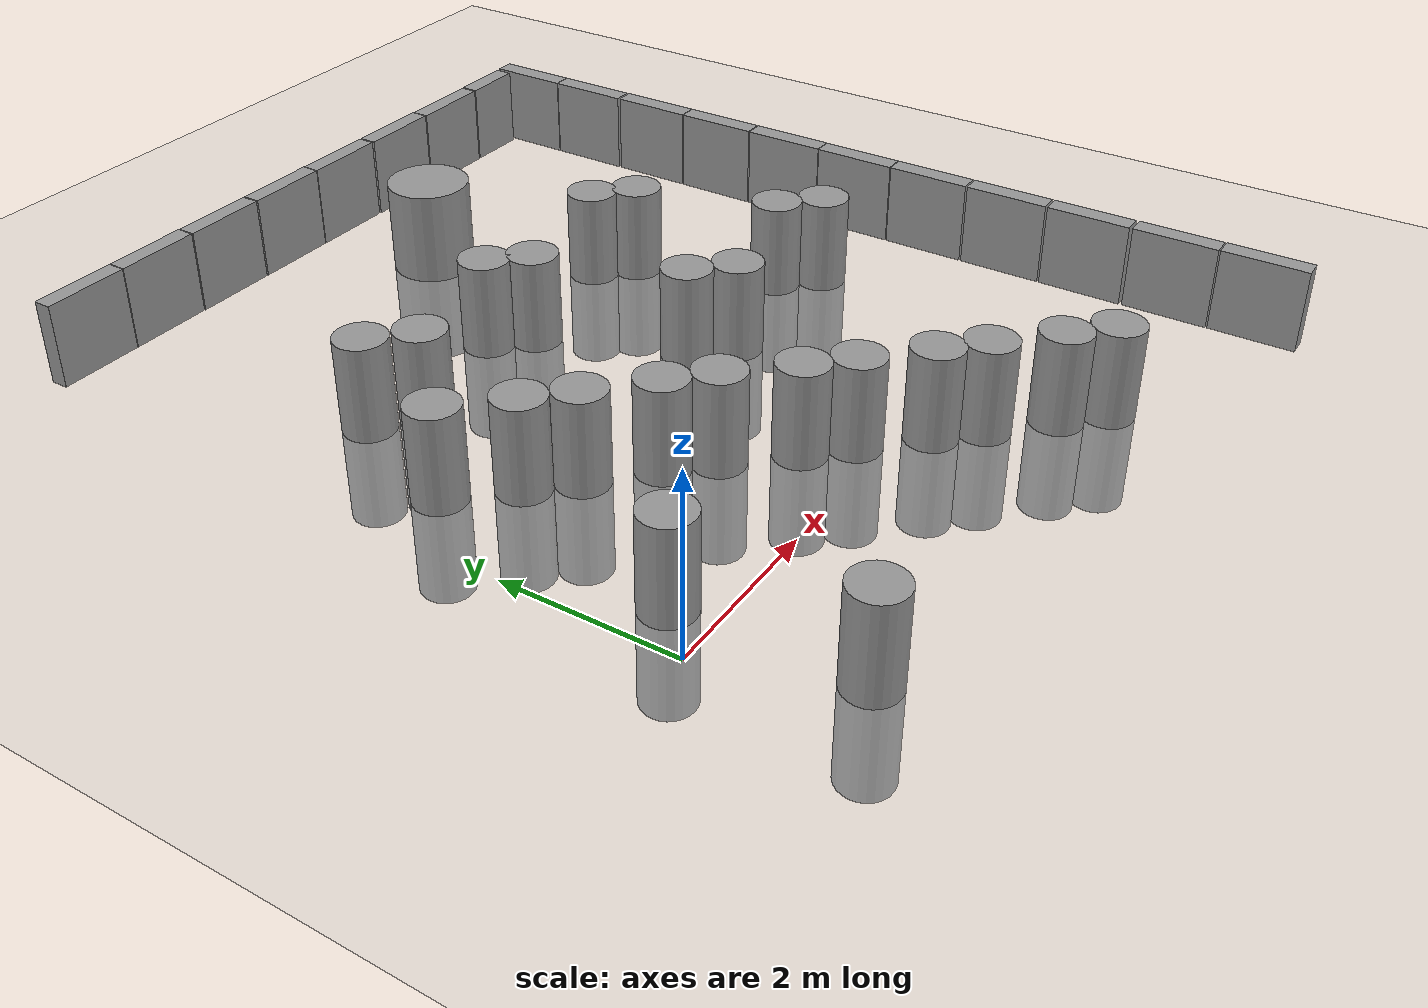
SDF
<sdf version="1.6">
 <world name="default">
  <model name="ground_plane">
   <static>1</static>
   <static>1</static>
   <link name="link">
    <collision name="collision">
     <geometry><plane><normal>0 0 1</normal><size>100 100</size></plane></geometry>
     <surface><friction><ode><mu>100</mu><mu2>50</mu2></ode></friction></surface>
    </collision>
    <visual name="visual">
     <cast_shadows>0</cast_shadows>
     <geometry><plane><normal>0 0 1</normal><size>100 100</size></plane></geometry>
     <material>
      <script><uri>file://media/materials/scripts/gazebo.material</uri><name>Gazebo/Grey</name></script>
     </material>
    </visual>
   </link>
  </model>
  <model name="unit_box_clone_7">
   <pose>0.592842 8.11157 0.499999 -1e-06 2e-06 0.00043</pose>
   <link name="link">
    <inertial>
     <mass>1</mass>
     <inertia>
      <ixx>0.166667</ixx>
      <ixy>0</ixy>
      <ixz>0</ixz>
      <iyy>0.166667</iyy>
      <iyz>0</iyz>
      <izz>0.166667</izz>
     </inertia>
    </inertial>
    <collision name="collision"><geometry><box><size>1 0.210541 1</size></box></geometry></collision>
    <visual name="visual">
     <geometry><box><size>1 0.210541 1</size></box></geometry>
     <material>
      <script><name>Gazebo/Grey</name><uri>file://media/materials/scripts/gazebo.material</uri></script>
     </material>
    </visual>
   </link>
  </model>
  <model name="unit_box_clone_8">
   <pose>1.60043 8.11008 0.499999 -1e-06 2e-06 0.00043</pose>
   <link name="link">
    <inertial>
     <mass>1</mass>
     <inertia>
      <ixx>0.166667</ixx>
      <ixy>0</ixy>
      <ixz>0</ixz>
      <iyy>0.166667</iyy>
      <iyz>0</iyz>
      <izz>0.166667</izz>
     </inertia>
    </inertial>
    <collision name="collision"><geometry><box><size>1 0.210541 1</size></box></geometry></collision>
    <visual name="visual">
     <geometry><box><size>1 0.210541 1</size></box></geometry>
     <material>
      <script><name>Gazebo/Grey</name><uri>file://media/materials/scripts/gazebo.material</uri></script>
     </material>
    </visual>
   </link>
  </model>
  <model name="unit_box_clone_9">
   <pose>2.60987 8.10289 0.499999 -1e-06 2e-06 0.00043</pose>
   <link name="link">
    <inertial>
     <mass>1</mass>
     <inertia>
      <ixx>0.166667</ixx>
      <ixy>0</ixy>
      <ixz>0</ixz>
      <iyy>0.166667</iyy>
      <iyz>0</iyz>
      <izz>0.166667</izz>
     </inertia>
    </inertial>
    <collision name="collision"><geometry><box><size>1 0.210541 1</size></box></geometry></collision>
    <visual name="visual">
     <geometry><box><size>1 0.210541 1</size></box></geometry>
     <material>
      <script><name>Gazebo/Grey</name><uri>file://media/materials/scripts/gazebo.material</uri></script>
     </material>
    </visual>
   </link>
  </model>
  <model name="unit_box_clone_10">
   <pose>3.62649 8.09929 0.499999 -1e-06 2e-06 0.00043</pose>
   <link name="link">
    <inertial>
     <mass>1</mass>
     <inertia>
      <ixx>0.166667</ixx>
      <ixy>0</ixy>
      <ixz>0</ixz>
      <iyy>0.166667</iyy>
      <iyz>0</iyz>
      <izz>0.166667</izz>
     </inertia>
    </inertial>
    <collision name="collision"><geometry><box><size>1 0.210541 1</size></box></geometry></collision>
    <visual name="visual">
     <geometry><box><size>1 0.210541 1</size></box></geometry>
     <material>
      <script><name>Gazebo/Grey</name><uri>file://media/materials/scripts/gazebo.material</uri></script>
     </material>
    </visual>
   </link>
  </model>
  <model name="unit_box_clone_11">
   <pose>4.63312 8.09533 0.499999 1e-06 2e-06 -0.003028</pose>
   <link name="link">
    <inertial>
     <mass>1</mass>
     <inertia>
      <ixx>0.166667</ixx>
      <ixy>0</ixy>
      <ixz>0</ixz>
      <iyy>0.166667</iyy>
      <iyz>0</iyz>
      <izz>0.166667</izz>
     </inertia>
    </inertial>
    <collision name="collision"><geometry><box><size>1 0.210541 1</size></box></geometry></collision>
    <visual name="visual">
     <geometry><box><size>1 0.210541 1</size></box></geometry>
     <material>
      <script><name>Gazebo/Grey</name><uri>file://media/materials/scripts/gazebo.material</uri></script>
     </material>
    </visual>
   </link>
  </model>
  <model name="unit_box_0_clone_0">
   <pose>8.11522 6.68459 0.5 1e-06 -1e-06 -0.000246</pose>
   <link name="link">
    <inertial>
     <mass>1</mass>
     <inertia>
      <ixx>0.166667</ixx>
      <ixy>0</ixy>
      <ixz>0</ixz>
      <iyy>0.166667</iyy>
      <iyz>0</iyz>
      <izz>0.166667</izz>
     </inertia>
    </inertial>
    <collision name="collision"><geometry><box><size>0.230819 1 1</size></box></geometry></collision>
    <visual name="visual">
     <geometry><box><size>0.230819 1 1</size></box></geometry>
     <material>
      <script><name>Gazebo/Grey</name><uri>file://media/materials/scripts/gazebo.material</uri></script>
     </material>
    </visual>
   </link>
  </model>
  <model name="unit_box_0_clone_1">
   <pose>8.11915 5.6517 0.5 -1e-06 -1e-06 0.000125</pose>
   <link name="link">
    <inertial>
     <mass>1</mass>
     <inertia>
      <ixx>0.166667</ixx>
      <ixy>0</ixy>
      <ixz>0</ixz>
      <iyy>0.166667</iyy>
      <iyz>0</iyz>
      <izz>0.166667</izz>
     </inertia>
    </inertial>
    <collision name="collision"><geometry><box><size>0.230819 1 1</size></box></geometry></collision>
    <visual name="visual">
     <geometry><box><size>0.230819 1 1</size></box></geometry>
     <material>
      <script><name>Gazebo/Grey</name><uri>file://media/materials/scripts/gazebo.material</uri></script>
     </material>
    </visual>
   </link>
  </model>
  <model name="unit_box_0_clone_2">
   <pose>8.11914 4.64016 0.5 1e-06 1e-06 0.00014</pose>
   <link name="link">
    <inertial>
     <mass>1</mass>
     <inertia>
      <ixx>0.166667</ixx>
      <ixy>0</ixy>
      <ixz>0</ixz>
      <iyy>0.166667</iyy>
      <iyz>0</iyz>
      <izz>0.166667</izz>
     </inertia>
    </inertial>
    <collision name="collision"><geometry><box><size>0.230819 1 1</size></box></geometry></collision>
    <visual name="visual">
     <geometry><box><size>0.230819 1 1</size></box></geometry>
     <material>
      <script><name>Gazebo/Grey</name><uri>file://media/materials/scripts/gazebo.material</uri></script>
     </material>
    </visual>
   </link>
  </model>
  <model name="unit_box_0_clone_3">
   <pose>8.11914 3.62226 0.5 1e-06 1e-06 0.000121</pose>
   <link name="link">
    <inertial>
     <mass>1</mass>
     <inertia>
      <ixx>0.166667</ixx>
      <ixy>0</ixy>
      <ixz>0</ixz>
      <iyy>0.166667</iyy>
      <iyz>0</iyz>
      <izz>0.166667</izz>
     </inertia>
    </inertial>
    <collision name="collision"><geometry><box><size>0.230819 1 1</size></box></geometry></collision>
    <visual name="visual">
     <geometry><box><size>0.230819 1 1</size></box></geometry>
     <material>
      <script><name>Gazebo/Grey</name><uri>file://media/materials/scripts/gazebo.material</uri></script>
     </material>
    </visual>
   </link>
  </model>
  <model name="unit_box_0_clone_4">
   <pose>8.11332 2.61062 0.5 -1e-06 1e-06 -0.001217</pose>
   <link name="link">
    <inertial>
     <mass>1</mass>
     <inertia>
      <ixx>0.166667</ixx>
      <ixy>0</ixy>
      <ixz>0</ixz>
      <iyy>0.166667</iyy>
      <iyz>0</iyz>
      <izz>0.166667</izz>
     </inertia>
    </inertial>
    <collision name="collision"><geometry><box><size>0.230819 1 1</size></box></geometry></collision>
    <visual name="visual">
     <geometry><box><size>0.230819 1 1</size></box></geometry>
     <material>
      <script><name>Gazebo/Grey</name><uri>file://media/materials/scripts/gazebo.material</uri></script>
     </material>
    </visual>
   </link>
  </model>
  <model name="unit_box_0_clone_5">
   <pose>8.11277 1.59919 0.5 1e-06 1e-06 0.000121</pose>
   <link name="link">
    <inertial>
     <mass>1</mass>
     <inertia>
      <ixx>0.166667</ixx>
      <ixy>0</ixy>
      <ixz>0</ixz>
      <iyy>0.166667</iyy>
      <iyz>0</iyz>
      <izz>0.166667</izz>
     </inertia>
    </inertial>
    <collision name="collision"><geometry><box><size>0.230819 1 1</size></box></geometry></collision>
    <visual name="visual">
     <geometry><box><size>0.230819 1 1</size></box></geometry>
     <material>
      <script><name>Gazebo/Grey</name><uri>file://media/materials/scripts/gazebo.material</uri></script>
     </material>
    </visual>
   </link>
  </model>
  <model name="unit_box_0_clone_6">
   <pose>8.11277 0.574937 0.5 1e-06 1e-06 0.000121</pose>
   <link name="link">
    <inertial>
     <mass>1</mass>
     <inertia>
      <ixx>0.166667</ixx>
      <ixy>0</ixy>
      <ixz>0</ixz>
      <iyy>0.166667</iyy>
      <iyz>0</iyz>
      <izz>0.166667</izz>
     </inertia>
    </inertial>
    <collision name="collision"><geometry><box><size>0.230819 1 1</size></box></geometry></collision>
    <visual name="visual">
     <geometry><box><size>0.230819 1 1</size></box></geometry>
     <material>
      <script><name>Gazebo/Grey</name><uri>file://media/materials/scripts/gazebo.material</uri></script>
     </material>
    </visual>
   </link>
  </model>
  <model name="unit_box_0_clone_7">
   <pose>8.11276 -0.449321 0.5 1e-06 1e-06 0.000121</pose>
   <link name="link">
    <inertial>
     <mass>1</mass>
     <inertia>
      <ixx>0.166667</ixx>
      <ixy>0</ixy>
      <ixz>0</ixz>
      <iyy>0.166667</iyy>
      <iyz>0</iyz>
      <izz>0.166667</izz>
     </inertia>
    </inertial>
    <collision name="collision"><geometry><box><size>0.230819 1 1</size></box></geometry></collision>
    <visual name="visual">
     <geometry><box><size>0.230819 1 1</size></box></geometry>
     <material>
      <script><name>Gazebo/Grey</name><uri>file://media/materials/scripts/gazebo.material</uri></script>
     </material>
    </visual>
   </link>
  </model>
  <model name="unit_box_0_clone_8">
   <pose>8.11912 -1.48631 0.5 1e-06 1e-06 0.000121</pose>
   <link name="link">
    <inertial>
     <mass>1</mass>
     <inertia>
      <ixx>0.166667</ixx>
      <ixy>0</ixy>
      <ixz>0</ixz>
      <iyy>0.166667</iyy>
      <iyz>0</iyz>
      <izz>0.166667</izz>
     </inertia>
    </inertial>
    <collision name="collision"><geometry><box><size>0.230819 1 1</size></box></geometry></collision>
    <visual name="visual">
     <geometry><box><size>0.230819 1 1</size></box></geometry>
     <material>
      <script><name>Gazebo/Grey</name><uri>file://media/materials/scripts/gazebo.material</uri></script>
     </material>
    </visual>
   </link>
  </model>
  <model name="unit_box_0_clone_9">
   <pose>8.12548 -2.50421 0.5 1e-06 1e-06 0.000121</pose>
   <link name="link">
    <inertial>
     <mass>1</mass>
     <inertia>
      <ixx>0.166667</ixx>
      <ixy>0</ixy>
      <ixz>0</ixz>
      <iyy>0.166667</iyy>
      <iyz>0</iyz>
      <izz>0.166667</izz>
     </inertia>
    </inertial>
    <collision name="collision"><geometry><box><size>0.230819 1 1</size></box></geometry></collision>
    <visual name="visual">
     <geometry><box><size>0.230819 1 1</size></box></geometry>
     <material>
      <script><name>Gazebo/Grey</name><uri>file://media/materials/scripts/gazebo.material</uri></script>
     </material>
    </visual>
   </link>
  </model>
  <model name="unit_box_0_clone_0_clone">
   <pose>8.11438 7.69322 0.5 -1e-06 -1e-06 0.000107</pose>
   <link name="link">
    <inertial>
     <mass>1</mass>
     <inertia>
      <ixx>0.166667</ixx>
      <ixy>0</ixy>
      <ixz>0</ixz>
      <iyy>0.166667</iyy>
      <iyz>0</iyz>
      <izz>0.166667</izz>
     </inertia>
    </inertial>
    <collision name="collision"><geometry><box><size>0.230819 1 1</size></box></geometry></collision>
    <visual name="visual">
     <geometry><box><size>0.230819 1 1</size></box></geometry>
     <material>
      <script><name>Gazebo/Grey</name><uri>file://media/materials/scripts/gazebo.material</uri></script>
     </material>
    </visual>
   </link>
  </model>
  <model name="unit_box_clone_11_clone">
   <pose>5.65439 8.08347 0.499999 -1e-06 2e-06 -0.003408</pose>
   <link name="link">
    <inertial>
     <mass>1</mass>
     <inertia>
      <ixx>0.166667</ixx>
      <ixy>0</ixy>
      <ixz>0</ixz>
      <iyy>0.166667</iyy>
      <iyz>0</iyz>
      <izz>0.166667</izz>
     </inertia>
    </inertial>
    <collision name="collision"><geometry><box><size>1 0.210541 1</size></box></geometry></collision>
    <visual name="visual">
     <geometry><box><size>1 0.210541 1</size></box></geometry>
     <material>
      <script><name>Gazebo/Grey</name><uri>file://media/materials/scripts/gazebo.material</uri></script>
     </material>
    </visual>
   </link>
  </model>
  <model name="unit_box_clone_11_clone_0">
   <pose>6.6644 8.07301 0.499999 1e-06 2e-06 -0.003015</pose>
   <link name="link">
    <inertial>
     <mass>1</mass>
     <inertia>
      <ixx>0.166667</ixx>
      <ixy>0</ixy>
      <ixz>0</ixz>
      <iyy>0.166667</iyy>
      <iyz>0</iyz>
      <izz>0.166667</izz>
     </inertia>
    </inertial>
    <collision name="collision"><geometry><box><size>1 0.210541 1</size></box></geometry></collision>
    <visual name="visual">
     <geometry><box><size>1 0.210541 1</size></box></geometry>
     <material>
      <script><name>Gazebo/Grey</name><uri>file://media/materials/scripts/gazebo.material</uri></script>
     </material>
    </visual>
   </link>
  </model>
  <model name="unit_box_clone_11_clone_1_clone">
   <pose>7.56436 8.07324 0.499997 -2e-06 -8e-06 -0.006519</pose>
   <link name="link">
    <inertial>
     <mass>1</mass>
     <inertia>
      <ixx>0.166667</ixx>
      <ixy>0</ixy>
      <ixz>0</ixz>
      <iyy>0.166667</iyy>
      <iyz>0</iyz>
      <izz>0.166667</izz>
     </inertia>
    </inertial>
    <collision name="collision"><geometry><box><size>0.750223 0.210541 1</size></box></geometry></collision>
    <visual name="visual">
     <geometry><box><size>0.750223 0.210541 1</size></box></geometry>
     <material>
      <script><name>Gazebo/Grey</name><uri>file://media/materials/scripts/gazebo.material</uri></script>
     </material>
    </visual>
   </link>
  </model>
  <model name="unit_cylinder_153_clone_clone_5_clone_clone_13_clone_0_clone_29_clone_32_clone_0_clone_4_clone_46_clone_42_clone_clone_clone_3_clone">
   <static>1</static>
   <pose>4.484 6.51326 0 0 -0 0</pose>
   <link name="link">
    <inertial>
     <mass>1</mass>
     <inertia><ixx>0.145833</ixx><ixy>0</ixy><ixz>0</ixz><iyy>0.145833</iyy><iyz>0</iyz><izz>0.125</izz></inertia>
    </inertial>
    <collision name="collision">
     <geometry><cylinder><radius>0.484115</radius><length>2.18667</length></cylinder></geometry>
    </collision>
    <visual name="visual">
     <geometry><cylinder><radius>0.484115</radius><length>2.18667</length></cylinder></geometry>
     <material>
      <script><name>Gazebo/Grey</name><uri>file://media/materials/scripts/gazebo.material</uri></script>
     </material>
    </visual>
   </link>
  </model>
  <model name="unit_cylinder_153_clone_clone_5_clone_clone_13_clone_0_clone_29_clone_32_clone_0_clone_4_clone_46_clone_42_clone_clone_clone_4_clone_2_clone_16_clone_6_clone">
   <static>1</static>
   <pose>2.71012 1.31041 0 0 -0 0</pose>
   <link name="link">
    <inertial>
     <mass>1</mass>
     <inertia><ixx>0.145833</ixx><ixy>0</ixy><ixz>0</ixz><iyy>0.145833</iyy><iyz>0</iyz><izz>0.125</izz></inertia>
    </inertial>
    <collision name="collision">
     <geometry><cylinder><radius>0.295479</radius><length>2.18667</length></cylinder></geometry>
    </collision>
    <visual name="visual">
     <geometry><cylinder><radius>0.295479</radius><length>2.18667</length></cylinder></geometry>
     <material>
      <script><name>Gazebo/Grey</name><uri>file://media/materials/scripts/gazebo.material</uri></script>
     </material>
    </visual>
   </link>
  </model>
  <model name="unit_cylinder_153_clone_clone_5_clone_clone_13_clone_0_clone_29_clone_32_clone_0_clone_4_clone_46_clone_42_clone_clone_clone_4_clone_2_clone_16_clone_6_clone_0">
   <static>1</static>
   <pose>2.29146 1.71557 0 0 -0 0</pose>
   <link name="link">
    <inertial>
     <mass>1</mass>
     <inertia><ixx>0.145833</ixx><ixy>0</ixy><ixz>0</ixz><iyy>0.145833</iyy><iyz>0</iyz><izz>0.125</izz></inertia>
    </inertial>
    <collision name="collision">
     <geometry><cylinder><radius>0.295479</radius><length>2.18667</length></cylinder></geometry>
    </collision>
    <visual name="visual">
     <geometry><cylinder><radius>0.295479</radius><length>2.18667</length></cylinder></geometry>
     <material>
      <script><name>Gazebo/Grey</name><uri>file://media/materials/scripts/gazebo.material</uri></script>
     </material>
    </visual>
   </link>
  </model>
  <model name="unit_cylinder_153_clone_clone_5_clone_clone_13_clone_0_clone_29_clone_32_clone_0_clone_4_clone_46_clone_42_clone_clone_clone_4_clone_2_clone_16_clone_6_clone_1">
   <static>1</static>
   <pose>1.69723 2.2693 0 0 -0 0</pose>
   <link name="link">
    <inertial>
     <mass>1</mass>
     <inertia><ixx>0.145833</ixx><ixy>0</ixy><ixz>0</ixz><iyy>0.145833</iyy><iyz>0</iyz><izz>0.125</izz></inertia>
    </inertial>
    <collision name="collision">
     <geometry><cylinder><radius>0.295479</radius><length>2.18667</length></cylinder></geometry>
    </collision>
    <visual name="visual">
     <geometry><cylinder><radius>0.295479</radius><length>2.18667</length></cylinder></geometry>
     <material>
      <script><name>Gazebo/Grey</name><uri>file://media/materials/scripts/gazebo.material</uri></script>
     </material>
    </visual>
   </link>
  </model>
  <model name="unit_cylinder_153_clone_clone_5_clone_clone_13_clone_0_clone_29_clone_32_clone_0_clone_4_clone_46_clone_42_clone_clone_clone_4_clone_2_clone_16_clone_6_clone_2">
   <static>1</static>
   <pose>1.27856 2.68796 0 0 -0 0</pose>
   <link name="link">
    <inertial>
     <mass>1</mass>
     <inertia><ixx>0.145833</ixx><ixy>0</ixy><ixz>0</ixz><iyy>0.145833</iyy><iyz>0</iyz><izz>0.125</izz></inertia>
    </inertial>
    <collision name="collision">
     <geometry><cylinder><radius>0.295479</radius><length>2.18667</length></cylinder></geometry>
    </collision>
    <visual name="visual">
     <geometry><cylinder><radius>0.295479</radius><length>2.18667</length></cylinder></geometry>
     <material>
      <script><name>Gazebo/Grey</name><uri>file://media/materials/scripts/gazebo.material</uri></script>
     </material>
    </visual>
   </link>
  </model>
  <model name="unit_cylinder_153_clone_clone_5_clone_clone_13_clone_0_clone_29_clone_32_clone_0_clone_4_clone_46_clone_42_clone_clone_clone_4_clone_2_clone_16_clone_6_clone_3">
   <static>1</static>
   <pose>0.71134 3.2822 0 0 -0 0</pose>
   <link name="link">
    <inertial>
     <mass>1</mass>
     <inertia><ixx>0.145833</ixx><ixy>0</ixy><ixz>0</ixz><iyy>0.145833</iyy><iyz>0</iyz><izz>0.125</izz></inertia>
    </inertial>
    <collision name="collision">
     <geometry><cylinder><radius>0.295479</radius><length>2.18667</length></cylinder></geometry>
    </collision>
    <visual name="visual">
     <geometry><cylinder><radius>0.295479</radius><length>2.18667</length></cylinder></geometry>
     <material>
      <script><name>Gazebo/Grey</name><uri>file://media/materials/scripts/gazebo.material</uri></script>
     </material>
    </visual>
   </link>
  </model>
  <model name="unit_cylinder_153_clone_clone_5_clone_clone_13_clone_0_clone_29_clone_32_clone_0_clone_4_clone_46_clone_42_clone_clone_clone_4_clone_2_clone_16_clone_6_clone_9">
   <static>1</static>
   <pose>3.27734 0.689158 0 0 -0 0</pose>
   <link name="link">
    <inertial>
     <mass>1</mass>
     <inertia><ixx>0.145833</ixx><ixy>0</ixy><ixz>0</ixz><iyy>0.145833</iyy><iyz>0</iyz><izz>0.125</izz></inertia>
    </inertial>
    <collision name="collision">
     <geometry><cylinder><radius>0.295479</radius><length>2.18667</length></cylinder></geometry>
    </collision>
    <visual name="visual">
     <geometry><cylinder><radius>0.295479</radius><length>2.18667</length></cylinder></geometry>
     <material>
      <script><name>Gazebo/Grey</name><uri>file://media/materials/scripts/gazebo.material</uri></script>
     </material>
    </visual>
   </link>
  </model>
  <model name="unit_cylinder_153_clone_clone_5_clone_clone_13_clone_0_clone_29_clone_32_clone_0_clone_4_clone_46_clone_42_clone_clone_clone_4_clone_2_clone_16_clone_6_clone_10">
   <static>1</static>
   <pose>3.69601 0.283995 0 0 -0 0</pose>
   <link name="link">
    <inertial>
     <mass>1</mass>
     <inertia><ixx>0.145833</ixx><ixy>0</ixy><ixz>0</ixz><iyy>0.145833</iyy><iyz>0</iyz><izz>0.125</izz></inertia>
    </inertial>
    <collision name="collision">
     <geometry><cylinder><radius>0.295479</radius><length>2.18667</length></cylinder></geometry>
    </collision>
    <visual name="visual">
     <geometry><cylinder><radius>0.295479</radius><length>2.18667</length></cylinder></geometry>
     <material>
      <script><name>Gazebo/Grey</name><uri>file://media/materials/scripts/gazebo.material</uri></script>
     </material>
    </visual>
   </link>
  </model>
  <model name="unit_cylinder_153_clone_clone_5_clone_clone_13_clone_0_clone_29_clone_32_clone_0_clone_4_clone_46_clone_42_clone_clone_clone_4_clone_2_clone_16_clone_6_clone_11">
   <static>1</static>
   <pose>4.27674 -0.296739 0 0 -0 0</pose>
   <link name="link">
    <inertial>
     <mass>1</mass>
     <inertia><ixx>0.145833</ixx><ixy>0</ixy><ixz>0</ixz><iyy>0.145833</iyy><iyz>0</iyz><izz>0.125</izz></inertia>
    </inertial>
    <collision name="collision">
     <geometry><cylinder><radius>0.295479</radius><length>2.18667</length></cylinder></geometry>
    </collision>
    <visual name="visual">
     <geometry><cylinder><radius>0.295479</radius><length>2.18667</length></cylinder></geometry>
     <material>
      <script><name>Gazebo/Grey</name><uri>file://media/materials/scripts/gazebo.material</uri></script>
     </material>
    </visual>
   </link>
  </model>
  <model name="unit_cylinder_153_clone_clone_5_clone_clone_13_clone_0_clone_29_clone_32_clone_0_clone_4_clone_46_clone_42_clone_clone_clone_4_clone_2_clone_16_clone_6_clone_12">
   <static>1</static>
   <pose>4.6819 -0.701902 0 0 -0 0</pose>
   <link name="link">
    <inertial>
     <mass>1</mass>
     <inertia><ixx>0.145833</ixx><ixy>0</ixy><ixz>0</ixz><iyy>0.145833</iyy><iyz>0</iyz><izz>0.125</izz></inertia>
    </inertial>
    <collision name="collision">
     <geometry><cylinder><radius>0.295479</radius><length>2.18667</length></cylinder></geometry>
    </collision>
    <visual name="visual">
     <geometry><cylinder><radius>0.295479</radius><length>2.18667</length></cylinder></geometry>
     <material>
      <script><name>Gazebo/Grey</name><uri>file://media/materials/scripts/gazebo.material</uri></script>
     </material>
    </visual>
   </link>
  </model>
  <model name="unit_cylinder_153_clone_clone_5_clone_clone_13_clone_0_clone_29_clone_32_clone_0_clone_4_clone_46_clone_42_clone_clone_clone_4_clone_2_clone_16_clone_6_clone_13">
   <static>1</static>
   <pose>5.26262 -1.26913 0 0 -0 0</pose>
   <link name="link">
    <inertial>
     <mass>1</mass>
     <inertia><ixx>0.145833</ixx><ixy>0</ixy><ixz>0</ixz><iyy>0.145833</iyy><iyz>0</iyz><izz>0.125</izz></inertia>
    </inertial>
    <collision name="collision">
     <geometry><cylinder><radius>0.295479</radius><length>2.18667</length></cylinder></geometry>
    </collision>
    <visual name="visual">
     <geometry><cylinder><radius>0.295479</radius><length>2.18667</length></cylinder></geometry>
     <material>
      <script><name>Gazebo/Grey</name><uri>file://media/materials/scripts/gazebo.material</uri></script>
     </material>
    </visual>
   </link>
  </model>
  <model name="unit_cylinder_153_clone_clone_5_clone_clone_13_clone_0_clone_29_clone_32_clone_0_clone_4_clone_46_clone_42_clone_clone_clone_4_clone_2_clone_16_clone_6_clone_14">
   <static>1</static>
   <pose>5.68129 -1.67429 0 0 -0 0</pose>
   <link name="link">
    <inertial>
     <mass>1</mass>
     <inertia><ixx>0.145833</ixx><ixy>0</ixy><ixz>0</ixz><iyy>0.145833</iyy><iyz>0</iyz><izz>0.125</izz></inertia>
    </inertial>
    <collision name="collision">
     <geometry><cylinder><radius>0.295479</radius><length>2.18667</length></cylinder></geometry>
    </collision>
    <visual name="visual">
     <geometry><cylinder><radius>0.295479</radius><length>2.18667</length></cylinder></geometry>
     <material>
      <script><name>Gazebo/Grey</name><uri>file://media/materials/scripts/gazebo.material</uri></script>
     </material>
    </visual>
   </link>
  </model>
  <model name="unit_cylinder_153_clone_clone_5_clone_clone_13_clone_0_clone_29_clone_32_clone_0_clone_4_clone_46_clone_42_clone_clone_clone_4_clone_2_clone_16_clone_6_clone_15">
   <static>1</static>
   <pose>1.29094 4.71129 0 0 -0 0</pose>
   <link name="link">
    <inertial>
     <mass>1</mass>
     <inertia><ixx>0.145833</ixx><ixy>0</ixy><ixz>0</ixz><iyy>0.145833</iyy><iyz>0</iyz><izz>0.125</izz></inertia>
    </inertial>
    <collision name="collision">
     <geometry><cylinder><radius>0.295479</radius><length>2.18667</length></cylinder></geometry>
    </collision>
    <visual name="visual">
     <geometry><cylinder><radius>0.295479</radius><length>2.18667</length></cylinder></geometry>
     <material>
      <script><name>Gazebo/Grey</name><uri>file://media/materials/scripts/gazebo.material</uri></script>
     </material>
    </visual>
   </link>
  </model>
  <model name="unit_cylinder_153_clone_clone_5_clone_clone_13_clone_0_clone_29_clone_32_clone_0_clone_4_clone_46_clone_42_clone_clone_clone_4_clone_2_clone_16_clone_6_clone_16">
   <static>1</static>
   <pose>1.74162 4.30723 0 0 -0 0</pose>
   <link name="link">
    <inertial>
     <mass>1</mass>
     <inertia><ixx>0.145833</ixx><ixy>0</ixy><ixz>0</ixz><iyy>0.145833</iyy><iyz>0</iyz><izz>0.125</izz></inertia>
    </inertial>
    <collision name="collision">
     <geometry><cylinder><radius>0.295479</radius><length>2.18667</length></cylinder></geometry>
    </collision>
    <visual name="visual">
     <geometry><cylinder><radius>0.295479</radius><length>2.18667</length></cylinder></geometry>
     <material>
      <script><name>Gazebo/Grey</name><uri>file://media/materials/scripts/gazebo.material</uri></script>
     </material>
    </visual>
   </link>
  </model>
  <model name="unit_cylinder_153_clone_clone_5_clone_clone_13_clone_0_clone_29_clone_32_clone_0_clone_4_clone_46_clone_42_clone_clone_clone_4_clone_2_clone_16_clone_6_clone_17">
   <static>1</static>
   <pose>3.2982 4.71861 0 0 -0 0</pose>
   <link name="link">
    <inertial>
     <mass>1</mass>
     <inertia><ixx>0.145833</ixx><ixy>0</ixy><ixz>0</ixz><iyy>0.145833</iyy><iyz>0</iyz><izz>0.125</izz></inertia>
    </inertial>
    <collision name="collision">
     <geometry><cylinder><radius>0.295479</radius><length>2.18667</length></cylinder></geometry>
    </collision>
    <visual name="visual">
     <geometry><cylinder><radius>0.295479</radius><length>2.18667</length></cylinder></geometry>
     <material>
      <script><name>Gazebo/Grey</name><uri>file://media/materials/scripts/gazebo.material</uri></script>
     </material>
    </visual>
   </link>
  </model>
  <model name="unit_cylinder_153_clone_clone_5_clone_clone_13_clone_0_clone_29_clone_32_clone_0_clone_4_clone_46_clone_42_clone_clone_clone_4_clone_2_clone_16_clone_6_clone_18">
   <static>1</static>
   <pose>3.68338 4.34475 0 0 -0 0</pose>
   <link name="link">
    <inertial>
     <mass>1</mass>
     <inertia><ixx>0.145833</ixx><ixy>0</ixy><ixz>0</ixz><iyy>0.145833</iyy><iyz>0</iyz><izz>0.125</izz></inertia>
    </inertial>
    <collision name="collision">
     <geometry><cylinder><radius>0.295479</radius><length>2.18667</length></cylinder></geometry>
    </collision>
    <visual name="visual">
     <geometry><cylinder><radius>0.295479</radius><length>2.18667</length></cylinder></geometry>
     <material>
      <script><name>Gazebo/Grey</name><uri>file://media/materials/scripts/gazebo.material</uri></script>
     </material>
    </visual>
   </link>
  </model>
  <model name="unit_cylinder_153_clone_clone_5_clone_clone_13_clone_0_clone_29_clone_32_clone_0_clone_4_clone_46_clone_42_clone_clone_clone_4_clone_2_clone_16_clone_6_clone_19">
   <static>1</static>
   <pose>5.32611 4.70728 0 0 -0 0</pose>
   <link name="link">
    <inertial>
     <mass>1</mass>
     <inertia><ixx>0.145833</ixx><ixy>0</ixy><ixz>0</ixz><iyy>0.145833</iyy><iyz>0</iyz><izz>0.125</izz></inertia>
    </inertial>
    <collision name="collision">
     <geometry><cylinder><radius>0.295479</radius><length>2.18667</length></cylinder></geometry>
    </collision>
    <visual name="visual">
     <geometry><cylinder><radius>0.295479</radius><length>2.18667</length></cylinder></geometry>
     <material>
      <script><name>Gazebo/Grey</name><uri>file://media/materials/scripts/gazebo.material</uri></script>
     </material>
    </visual>
   </link>
  </model>
  <model name="unit_cylinder_153_clone_clone_5_clone_clone_13_clone_0_clone_29_clone_32_clone_0_clone_4_clone_46_clone_42_clone_clone_clone_4_clone_2_clone_16_clone_6_clone_20">
   <static>1</static>
   <pose>5.71129 4.33341 0 0 -0 0</pose>
   <link name="link">
    <inertial>
     <mass>1</mass>
     <inertia><ixx>0.145833</ixx><ixy>0</ixy><ixz>0</ixz><iyy>0.145833</iyy><iyz>0</iyz><izz>0.125</izz></inertia>
    </inertial>
    <collision name="collision">
     <geometry><cylinder><radius>0.295479</radius><length>2.18667</length></cylinder></geometry>
    </collision>
    <visual name="visual">
     <geometry><cylinder><radius>0.295479</radius><length>2.18667</length></cylinder></geometry>
     <material>
      <script><name>Gazebo/Grey</name><uri>file://media/materials/scripts/gazebo.material</uri></script>
     </material>
    </visual>
   </link>
  </model>
  <model name="unit_cylinder_153_clone_clone_5_clone_clone_13_clone_0_clone_29_clone_32_clone_0_clone_4_clone_46_clone_42_clone_clone_clone_4_clone_2_clone_16_clone_6_clone_21">
   <static>1</static>
   <pose>6.27774 2.72468 0 0 -0 0</pose>
   <link name="link">
    <inertial>
     <mass>1</mass>
     <inertia><ixx>0.145833</ixx><ixy>0</ixy><ixz>0</ixz><iyy>0.145833</iyy><iyz>0</iyz><izz>0.125</izz></inertia>
    </inertial>
    <collision name="collision">
     <geometry><cylinder><radius>0.295479</radius><length>2.18667</length></cylinder></geometry>
    </collision>
    <visual name="visual">
     <geometry><cylinder><radius>0.295479</radius><length>2.18667</length></cylinder></geometry>
     <material>
      <script><name>Gazebo/Grey</name><uri>file://media/materials/scripts/gazebo.material</uri></script>
     </material>
    </visual>
   </link>
  </model>
  <model name="unit_cylinder_153_clone_clone_5_clone_clone_13_clone_0_clone_29_clone_32_clone_0_clone_4_clone_46_clone_42_clone_clone_clone_4_clone_2_clone_16_clone_6_clone_22">
   <static>1</static>
   <pose>6.67425 2.31683 0 0 -0 0</pose>
   <link name="link">
    <inertial>
     <mass>1</mass>
     <inertia><ixx>0.145833</ixx><ixy>0</ixy><ixz>0</ixz><iyy>0.145833</iyy><iyz>0</iyz><izz>0.125</izz></inertia>
    </inertial>
    <collision name="collision">
     <geometry><cylinder><radius>0.295479</radius><length>2.18667</length></cylinder></geometry>
    </collision>
    <visual name="visual">
     <geometry><cylinder><radius>0.295479</radius><length>2.18667</length></cylinder></geometry>
     <material>
      <script><name>Gazebo/Grey</name><uri>file://media/materials/scripts/gazebo.material</uri></script>
     </material>
    </visual>
   </link>
  </model>
  <model name="unit_cylinder_153_clone_clone_5_clone_clone_13_clone_0_clone_29_clone_32_clone_0_clone_4_clone_46_clone_42_clone_clone_clone_4_clone_2_clone_16_clone_6_clone_23">
   <static>1</static>
   <pose>4.31781 2.72469 0 0 -0 0</pose>
   <link name="link">
    <inertial>
     <mass>1</mass>
     <inertia><ixx>0.145833</ixx><ixy>0</ixy><ixz>0</ixz><iyy>0.145833</iyy><iyz>0</iyz><izz>0.125</izz></inertia>
    </inertial>
    <collision name="collision">
     <geometry><cylinder><radius>0.295479</radius><length>2.18667</length></cylinder></geometry>
    </collision>
    <visual name="visual">
     <geometry><cylinder><radius>0.295479</radius><length>2.18667</length></cylinder></geometry>
     <material>
      <script><name>Gazebo/Grey</name><uri>file://media/materials/scripts/gazebo.material</uri></script>
     </material>
    </visual>
   </link>
  </model>
  <model name="unit_cylinder_153_clone_clone_5_clone_clone_13_clone_0_clone_29_clone_32_clone_0_clone_4_clone_46_clone_42_clone_clone_clone_4_clone_2_clone_16_clone_6_clone_24">
   <static>1</static>
   <pose>4.73698 2.32817 0 0 -0 0</pose>
   <link name="link">
    <inertial>
     <mass>1</mass>
     <inertia><ixx>0.145833</ixx><ixy>0</ixy><ixz>0</ixz><iyy>0.145833</iyy><iyz>0</iyz><izz>0.125</izz></inertia>
    </inertial>
    <collision name="collision">
     <geometry><cylinder><radius>0.295479</radius><length>2.18667</length></cylinder></geometry>
    </collision>
    <visual name="visual">
     <geometry><cylinder><radius>0.295479</radius><length>2.18667</length></cylinder></geometry>
     <material>
      <script><name>Gazebo/Grey</name><uri>file://media/materials/scripts/gazebo.material</uri></script>
     </material>
    </visual>
   </link>
  </model>
  <model name="unit_cylinder_153_clone_clone_5_clone_clone_13_clone_0_clone_29_clone_32_clone_0_clone_4_clone_46_clone_42_clone_clone_clone_4_clone_2_clone_16_clone_6_clone_25">
   <static>1</static>
   <pose>0.510126 0.487743 0 0 -0 0</pose>
   <link name="link">
    <inertial>
     <mass>1</mass>
     <inertia><ixx>0.145833</ixx><ixy>0</ixy><ixz>0</ixz><iyy>0.145833</iyy><iyz>0</iyz><izz>0.125</izz></inertia>
    </inertial>
    <collision name="collision">
     <geometry><cylinder><radius>0.295479</radius><length>2.18667</length></cylinder></geometry>
    </collision>
    <visual name="visual">
     <geometry><cylinder><radius>0.295479</radius><length>2.18667</length></cylinder></geometry>
     <material>
      <script><name>Gazebo/Grey</name><uri>file://media/materials/scripts/gazebo.material</uri></script>
     </material>
    </visual>
   </link>
  </model>
  <model name="unit_cylinder_153_clone_clone_5_clone_clone_13_clone_0_clone_29_clone_32_clone_0_clone_4_clone_46_clone_42_clone_clone_clone_4_clone_2_clone_16_clone_6_clone_26">
   <static>1</static>
   <pose>0.599964 -1.50688 0 0 -0 0</pose>
   <link name="link">
    <inertial>
     <mass>1</mass>
     <inertia><ixx>0.145833</ixx><ixy>0</ixy><ixz>0</ixz><iyy>0.145833</iyy><iyz>0</iyz><izz>0.125</izz></inertia>
    </inertial>
    <collision name="collision">
     <geometry><cylinder><radius>0.295479</radius><length>2.18667</length></cylinder></geometry>
    </collision>
    <visual name="visual">
     <geometry><cylinder><radius>0.295479</radius><length>2.18667</length></cylinder></geometry>
     <material>
      <script><name>Gazebo/Grey</name><uri>file://media/materials/scripts/gazebo.material</uri></script>
     </material>
    </visual>
   </link>
  </model>
 </world>
</sdf>
